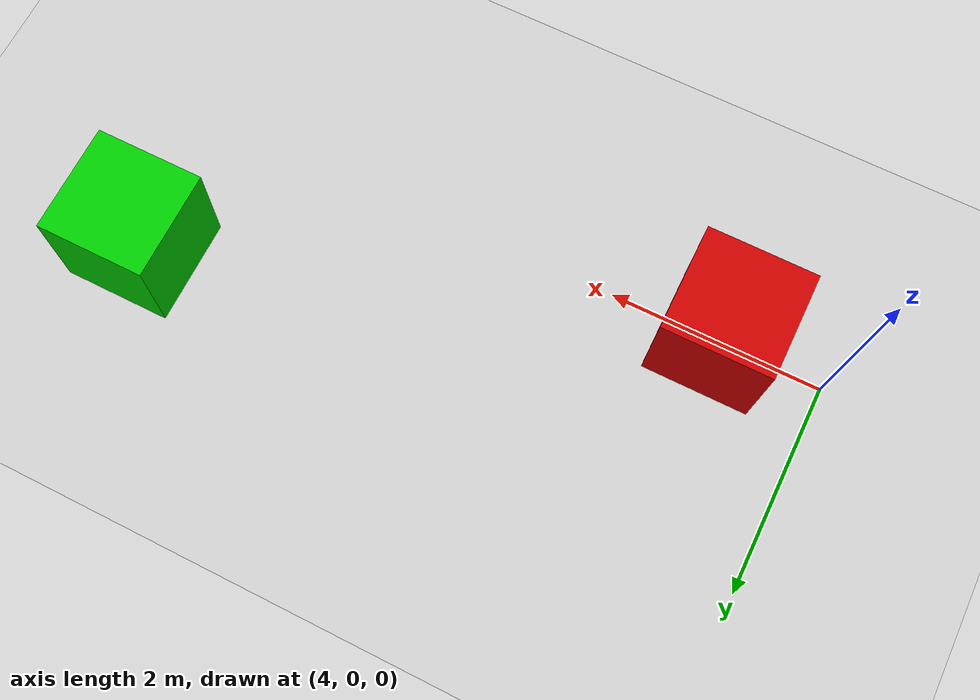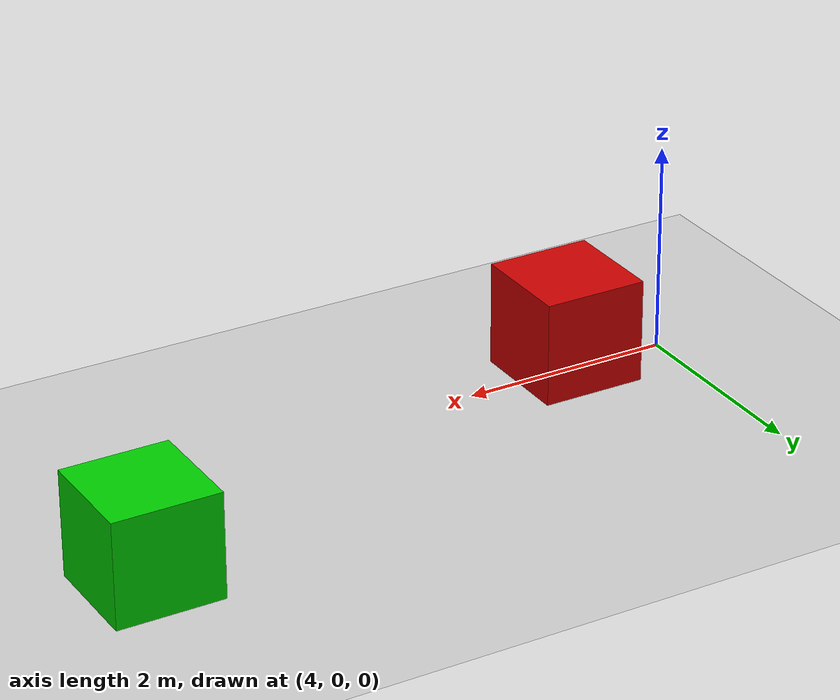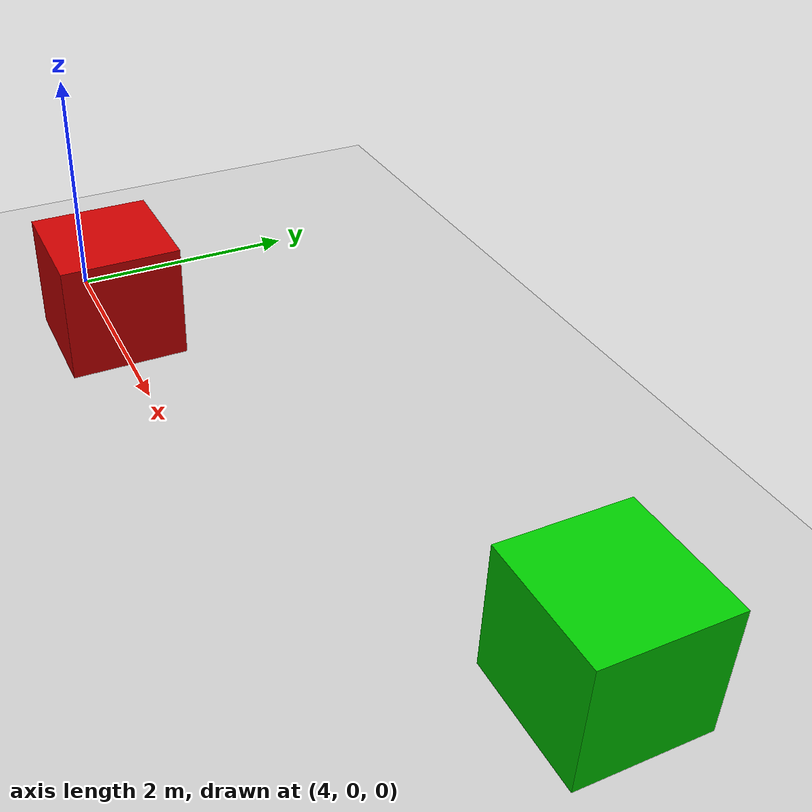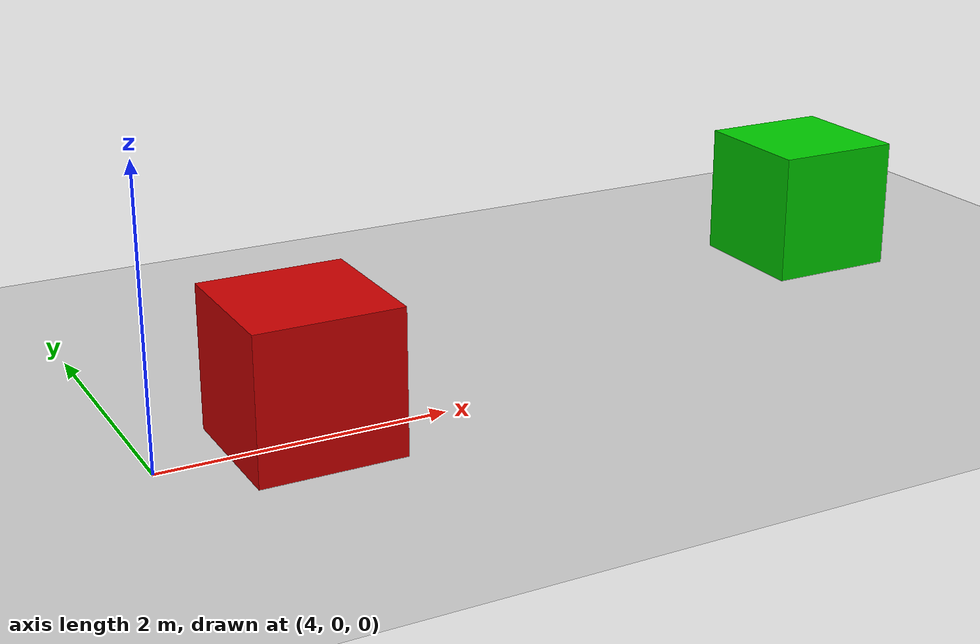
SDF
<?xml version="1.0" ?>
<sdf version="1.8">
  <world name="swarm_world">
    <physics name="1ms" type="ignored">
      <max_step_size>0.001</max_step_size>
      <real_time_factor>1.0</real_time_factor>
    </physics>
    <plugin filename="gz-sim-physics-system" name="gz::sim::systems::Physics"/>
    <plugin filename="gz-sim-user-commands-system" name="gz::sim::systems::UserCommands"/>
    <plugin filename="gz-sim-scene-broadcaster-system" name="gz::sim::systems::SceneBroadcaster"/>
    <plugin filename="gz-sim-sensors-system" name="gz::sim::systems::Sensors"><render_engine>ogre2</render_engine></plugin>

    <light type="directional" name="sun">
      <cast_shadows>true</cast_shadows>
      <pose>0 0 10 0 0 0</pose>
      <direction>-0.5 0.1 -0.9</direction>
    </light>

    <model name="ground_plane">
      <static>true</static>
      <link name="link">
        <collision name="collision"><geometry><plane><normal>0 0 1</normal></plane></geometry></collision>
        <visual name="visual"><geometry><plane><normal>0 0 1</normal><size>100 100</size></plane></geometry></visual>
      </link>
    </model>

    <model name="target_1"><static>true</static><pose>5 0 0.5 0 0 0</pose>
      <link name="l"><visual name="v"><geometry><box><size>1 1 1</size></box></geometry><material><ambient>0.8 0 0 1</ambient></material></visual></link>
    </model>

    <model name="target_2"><static>true</static><pose>10 1.5 0.5 0 0 0</pose>
      <link name="l"><visual name="v"><geometry><box><size>1 1 1</size></box></geometry><material><ambient>0 0.8 0 1</ambient></material></visual></link>
    </model>
  </world>
</sdf>
